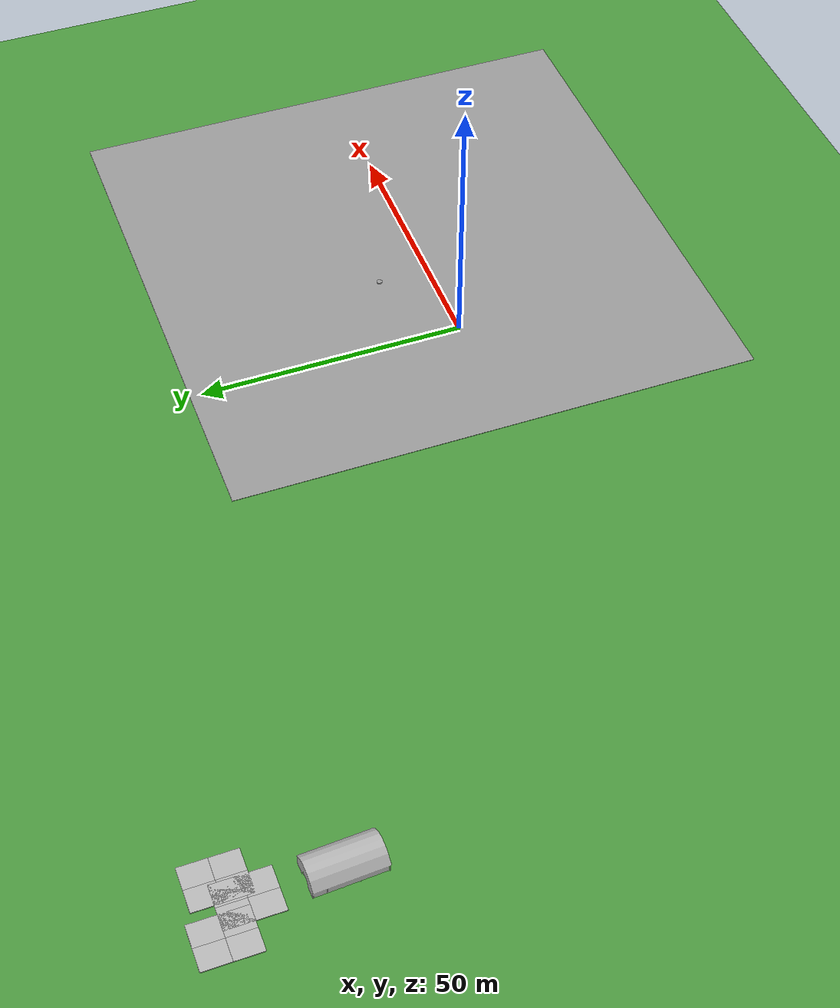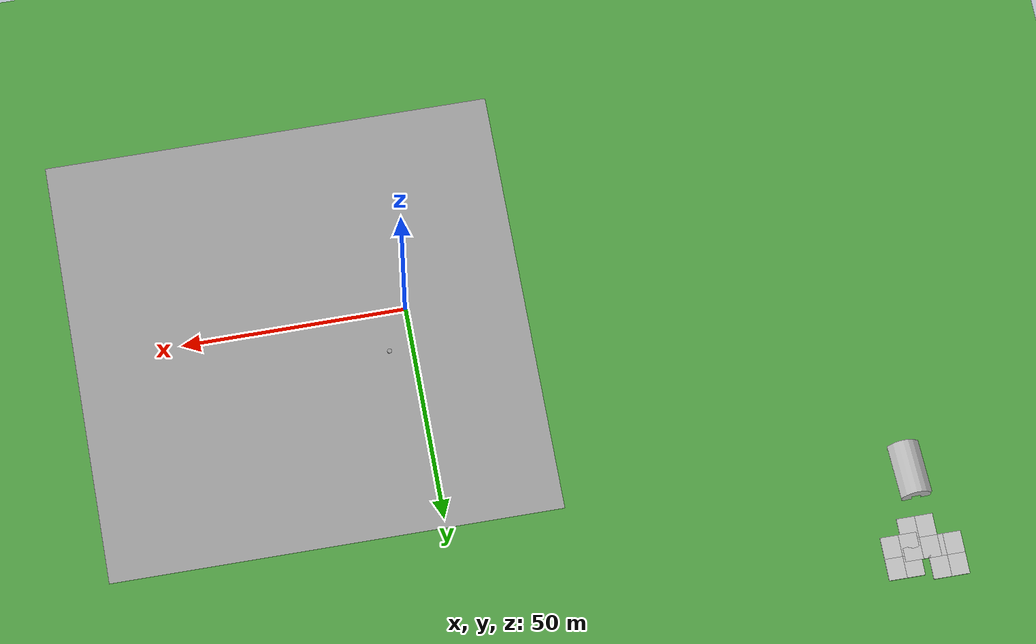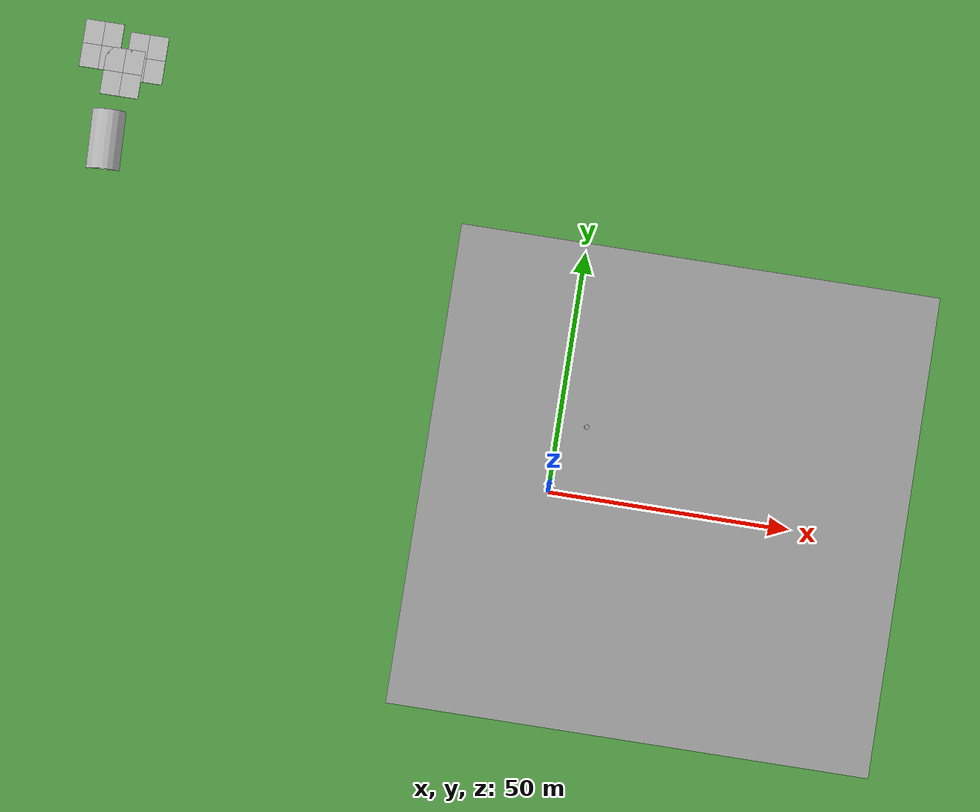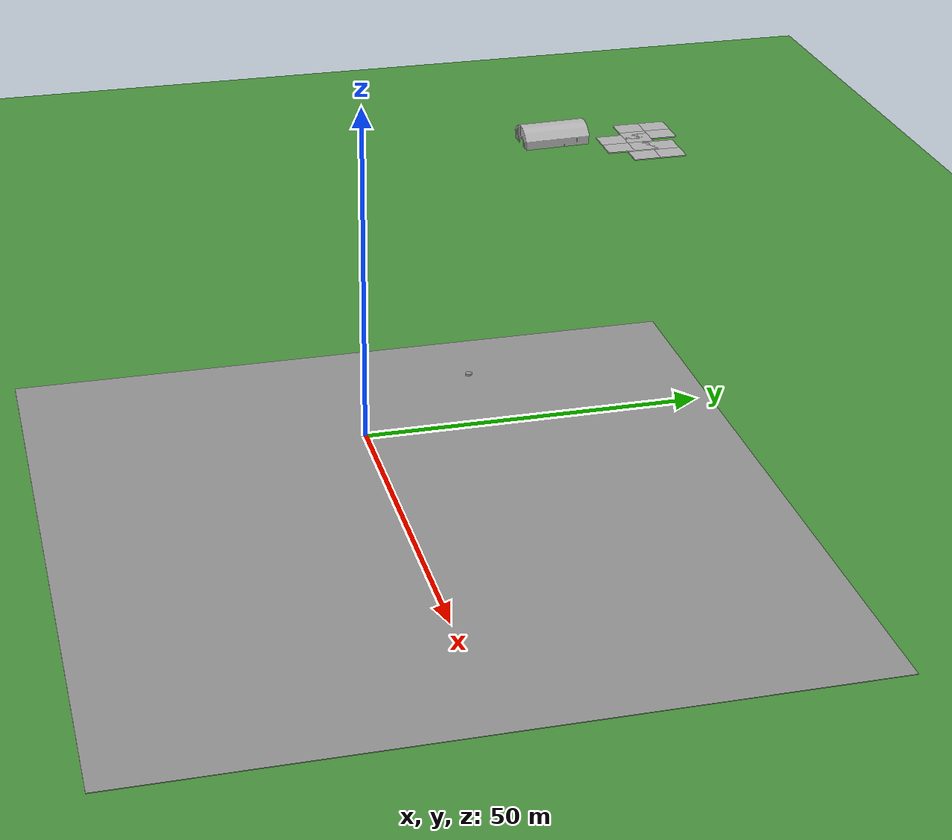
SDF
<sdf version="1.7">
 <world name="default">
  <physics type="ode">
   <ode>
    <solver>
     <type>quick</type>
     <iters>100</iters>
     <sor>1</sor>
     <use_dynamic_moi_rescaling>0</use_dynamic_moi_rescaling>
    </solver>
    <constraints>
     <cfm>0</cfm>
     <erp>0.9</erp>
     <contact_max_correcting_vel>0.1</contact_max_correcting_vel>
     <contact_surface_layer>0</contact_surface_layer>
    </constraints>
   </ode>
   <real_time_update_rate>-1</real_time_update_rate>
   <max_step_size>0.001</max_step_size>
   <real_time_factor>1</real_time_factor>
  </physics>
  <model name="ground_plane">
   <static>1</static>
   <link name="link">
    <collision name="collision">
     <geometry><plane><normal>0 0 1</normal><size>5000 5000</size></plane></geometry>
     <surface><friction><ode><mu>1</mu><mu2>1</mu2></ode></friction></surface>
    </collision>
    <visual name="grass">
     <pose>0 0 -0.1 0 -0 0</pose>
     <cast_shadows>0</cast_shadows>
     <geometry><plane><normal>0 0 1</normal><size>5000 5000</size></plane></geometry>
     <material>
      <script><uri>file://media/materials/scripts/gazebo.material</uri><name>Gazebo/Grass</name></script>
     </material>
    </visual>
   </link>
  </model>
  <light name="sun" type="directional">
   <pose>0 0 10 0 -0 0</pose>
   <diffuse>0.8 0.8 0.8 1</diffuse>
   <specular>0.2 0.2 0.2 1</specular>
   <attenuation>
    <range>1000</range>
    <constant>0.9</constant>
    <linear>0.01</linear>
    <quadratic>0.001</quadratic>
   </attenuation>
   <direction>-0.5 0.1 -0.9</direction>
   <spot><inner_angle>0</inner_angle><outer_angle>0</outer_angle><falloff>0</falloff></spot>
   <visualize>0</visualize>
  </light>
  <gravity>0 0 -9.8</gravity>
  <magnetic_field>6e-06 2.3e-05 -4.2e-05</magnetic_field>
  <atmosphere type="adiabatic"/>
  <scene><ambient>0.4 0.4 0.4 1</ambient><background>0.7 0.7 0.7 1</background><shadows>1</shadows></scene>
  <spherical_coordinates>
   <surface_model>EARTH_WGS84</surface_model>
   <latitude_deg>0</latitude_deg>
   <longitude_deg>0</longitude_deg>
   <elevation>0</elevation>
   <heading_deg>0</heading_deg>
  </spherical_coordinates>
  <model name="ground_plane_0">
   <static>1</static>
   <link name="link">
    <collision name="collision">
     <geometry><plane><normal>0 0 1</normal><size>100 100</size></plane></geometry>
     <surface>
      <contact><collide_bitmask>65535</collide_bitmask></contact>
      <friction><ode><mu>100</mu><mu2>50</mu2></ode></friction>
     </surface>
    </collision>
    <visual name="visual">
     <cast_shadows>0</cast_shadows>
     <geometry><plane><normal>0 0 1</normal><size>100 100</size></plane></geometry>
     <material>
      <script><uri>file://media/materials/scripts/gazebo.material</uri><name>Gazebo/Grey</name></script>
     </material>
    </visual>
   </link>
   <pose>23.7201 2.14936 0 0 -0 0</pose>
  </model>
  <model name="mud_box_3">
   <static>1</static>
   <link name="link">
    <collision name="collision"><geometry><box><size>8 10 0.2</size></box></geometry></collision>
    <visual name="visual_1">
     <pose>-2 2.5 0 0 -0 0</pose>
     <cast_shadows>0</cast_shadows>
     <geometry><box><size>4 5 0.2</size></box></geometry>
     <material>
      <script>
       <uri>model://mud_box/materials/scripts</uri>
       <uri>model://mud_box/materials/textures</uri>
       <name>vrc/mud</name>
      </script>
     </material>
    </visual>
    <visual name="visual_2">
     <pose>2 2.5 0 0 -0 0</pose>
     <cast_shadows>0</cast_shadows>
     <geometry><box><size>4 5 0.2</size></box></geometry>
     <material>
      <script>
       <uri>model://mud_box/materials/scripts</uri>
       <uri>model://mud_box/materials/textures</uri>
       <name>vrc/mud</name>
      </script>
     </material>
    </visual>
    <visual name="visual_3">
     <pose>2 -2.5 0 0 -0 0</pose>
     <cast_shadows>0</cast_shadows>
     <geometry><box><size>4 5 0.2</size></box></geometry>
     <material>
      <script>
       <uri>model://mud_box/materials/scripts</uri>
       <uri>model://mud_box/materials/textures</uri>
       <name>vrc/mud</name>
      </script>
     </material>
    </visual>
    <visual name="visual_4">
     <pose>-2 -2.5 0 0 -0 0</pose>
     <cast_shadows>0</cast_shadows>
     <geometry><box><size>4 5 0.2</size></box></geometry>
     <material>
      <script>
       <uri>model://mud_box/materials/scripts</uri>
       <uri>model://mud_box/materials/textures</uri>
       <name>vrc/mud</name>
      </script>
     </material>
    </visual>
   </link>
   <pose>-100.61 72.2957 0 0 -0 0</pose>
  </model>
  <model name="mud_box_3_clone_0">
   <static>1</static>
   <link name="link">
    <collision name="collision"><geometry><box><size>8 10 0.2</size></box></geometry></collision>
    <visual name="visual_1">
     <pose>-2 2.5 0 0 -0 0</pose>
     <cast_shadows>0</cast_shadows>
     <geometry><box><size>4 5 0.2</size></box></geometry>
     <material>
      <script>
       <uri>model://mud_box/materials/scripts</uri>
       <uri>model://mud_box/materials/textures</uri>
       <name>vrc/mud</name>
      </script>
     </material>
    </visual>
    <visual name="visual_2">
     <pose>2 2.5 0 0 -0 0</pose>
     <cast_shadows>0</cast_shadows>
     <geometry><box><size>4 5 0.2</size></box></geometry>
     <material>
      <script>
       <uri>model://mud_box/materials/scripts</uri>
       <uri>model://mud_box/materials/textures</uri>
       <name>vrc/mud</name>
      </script>
     </material>
    </visual>
    <visual name="visual_3">
     <pose>2 -2.5 0 0 -0 0</pose>
     <cast_shadows>0</cast_shadows>
     <geometry><box><size>4 5 0.2</size></box></geometry>
     <material>
      <script>
       <uri>model://mud_box/materials/scripts</uri>
       <uri>model://mud_box/materials/textures</uri>
       <name>vrc/mud</name>
      </script>
     </material>
    </visual>
    <visual name="visual_4">
     <pose>-2 -2.5 0 0 -0 0</pose>
     <cast_shadows>0</cast_shadows>
     <geometry><box><size>4 5 0.2</size></box></geometry>
     <material>
      <script>
       <uri>model://mud_box/materials/scripts</uri>
       <uri>model://mud_box/materials/textures</uri>
       <name>vrc/mud</name>
      </script>
     </material>
    </visual>
   </link>
   <pose>-105.777 77.2628 0 0 -0 0</pose>
  </model>
  <model name="mud_box_3_clone_1">
   <static>1</static>
   <link name="link">
    <collision name="collision"><geometry><box><size>8 10 0.2</size></box></geometry></collision>
    <visual name="visual_1">
     <pose>-2 2.5 0 0 -0 0</pose>
     <cast_shadows>0</cast_shadows>
     <geometry><box><size>4 5 0.2</size></box></geometry>
     <material>
      <script>
       <uri>model://mud_box/materials/scripts</uri>
       <uri>model://mud_box/materials/textures</uri>
       <name>vrc/mud</name>
      </script>
     </material>
    </visual>
    <visual name="visual_2">
     <pose>2 2.5 0 0 -0 0</pose>
     <cast_shadows>0</cast_shadows>
     <geometry><box><size>4 5 0.2</size></box></geometry>
     <material>
      <script>
       <uri>model://mud_box/materials/scripts</uri>
       <uri>model://mud_box/materials/textures</uri>
       <name>vrc/mud</name>
      </script>
     </material>
    </visual>
    <visual name="visual_3">
     <pose>2 -2.5 0 0 -0 0</pose>
     <cast_shadows>0</cast_shadows>
     <geometry><box><size>4 5 0.2</size></box></geometry>
     <material>
      <script>
       <uri>model://mud_box/materials/scripts</uri>
       <uri>model://mud_box/materials/textures</uri>
       <name>vrc/mud</name>
      </script>
     </material>
    </visual>
    <visual name="visual_4">
     <pose>-2 -2.5 0 0 -0 0</pose>
     <cast_shadows>0</cast_shadows>
     <geometry><box><size>4 5 0.2</size></box></geometry>
     <material>
      <script>
       <uri>model://mud_box/materials/scripts</uri>
       <uri>model://mud_box/materials/textures</uri>
       <name>vrc/mud</name>
      </script>
     </material>
    </visual>
   </link>
   <pose>-96.2023 75.9588 0 0 -0 0</pose>
  </model>
  <model name="red_barn">
   <static>1</static>
   <link name="link">
    <visual name="visual">
     <geometry><mesh><uri>model://red_barn/meshes/red_barn.dae</uri><scale>1 1 1</scale></mesh></geometry>
    </visual>
    <collision name="collision">
     <geometry><mesh><uri>model://red_barn/meshes/red_barn.dae</uri><scale>1 1 1</scale></mesh></geometry>
    </collision>
   </link>
   <pose>-101.382 57.6965 1.89217 0 0 -3.09655</pose>
  </model>
  <model name="base_cylinder">
   <link name="link">
    <inertial>
     <mass>0.26529</mass>
     <inertia>
      <ixx>0.0181365</ixx>
      <ixy>0</ixy>
      <ixz>0</ixz>
      <iyy>0.0181365</iyy>
      <iyz>0</iyz>
      <izz>0.0331613</izz>
     </inertia>
    </inertial>
    <kinematic>1</kinematic>
    <pose>0 -0 -0.6327 0 -0 0</pose>
    <visual name="visual">
     <geometry><cylinder><radius>0.5</radius><length>0.265286</length></cylinder></geometry>
     <material>
      <script><name>Gazebo/Grey</name><uri>file://media/materials/scripts/gazebo.material</uri></script>
      <shader type="pixel"/>
     </material>
    </visual>
    <collision name="collision">
     <geometry><cylinder><radius>0.5</radius><length>0.265286</length></cylinder></geometry>
     <surface>
      <friction>
       <ode><mu>1</mu><mu2>1</mu2><fdir1>0 0 0</fdir1><slip1>0</slip1><slip2>0</slip2></ode>
       <torsional>
        <coefficient>1</coefficient>
        <patch_radius>0</patch_radius>
        <surface_radius>0</surface_radius>
        <use_patch_radius>1</use_patch_radius>
        <ode><slip>0</slip></ode>
       </torsional>
      </friction>
      <bounce><restitution_coefficient>0</restitution_coefficient><threshold>1e+06</threshold></bounce>
      <contact>
       <collide_without_contact>0</collide_without_contact>
       <collide_without_contact_bitmask>1</collide_without_contact_bitmask>
       <collide_bitmask>1</collide_bitmask>
       <ode>
        <soft_cfm>0</soft_cfm>
        <soft_erp>0.2</soft_erp>
        <kp>1e+13</kp>
        <kd>1</kd>
        <max_vel>0.01</max_vel>
        <min_depth>0</min_depth>
       </ode>
       <bullet>
        <split_impulse>1</split_impulse>
        <split_impulse_penetration_threshold>-0.01</split_impulse_penetration_threshold>
        <soft_cfm>0</soft_cfm>
        <soft_erp>0.2</soft_erp>
        <kp>1e+13</kp>
        <kd>1</kd>
       </bullet>
      </contact>
     </surface>
    </collision>
   </link>
   <static>0</static>
   <pose>5.66454 13.7135 11.8473 0 0 -1.8e-05</pose>
  </model>
 </world>
</sdf>
